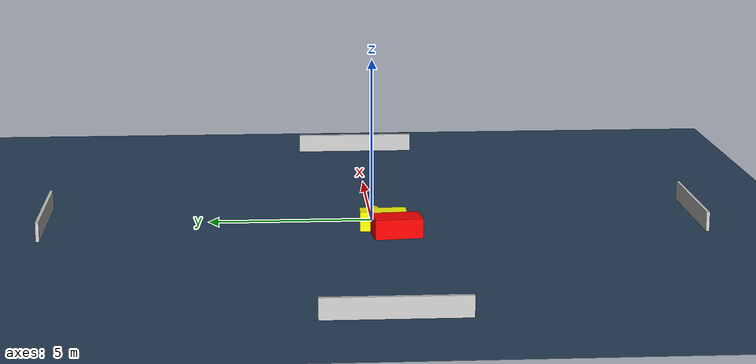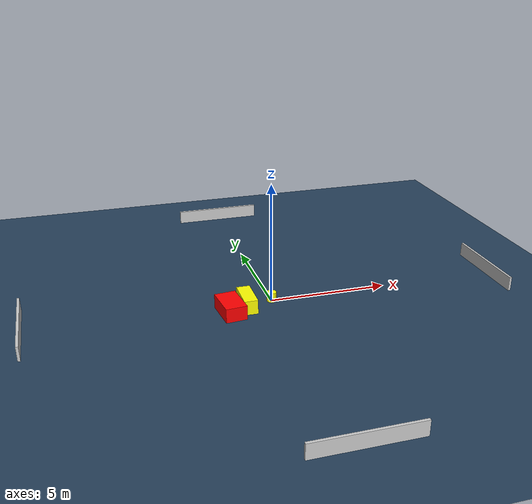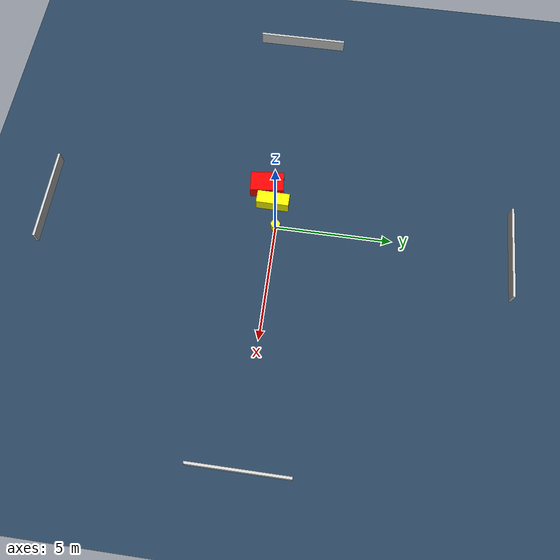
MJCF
<?xml version="1.0" ?>
<mujoco model="generated_environment">
  <option timestep="0.01" integrator="RK4" cone="elliptic"/>
  <default>
    <geom density="1"/>
  </default>
  <asset>
    <texture builtin="gradient" height="3072" name="skybox" rgb1="0.3 0.5 0.7" rgb2="0 0 0" type="skybox" width="512"/>
    <texture builtin="checker" height="300" name="groundplane" rgb1="0.2 0.3 0.4" rgb2="0.1 0.2 0.3" type="2d" width="300"/>
    <material name="groundplane" reflectance="0.2" texrepeat="5 5" texture="groundplane"/>
  </asset>
  <worldbody>
    <light dir="0 0 -1" directional="true" pos="0 0 1.5"/>
    <geom condim="3" friction="0.5 0.005 0.001" material="groundplane" name="floor" pos="0 0 0" size="0 0 0.05" type="plane"/>
    <body name="walls">
      <geom name="wall_1" condim="4" pos="-10.0 0.0 0.3" rgba="0.800000011920929 0.800000011920929 0.800000011920929 1.0" size="0.05 2.0 0.3" type="box"/>
      <geom name="wall_2" condim="4" pos="10.0 0.0 0.3" rgba="0.800000011920929 0.800000011920929 0.800000011920929 1.0" size="0.05 2.0 0.3" type="box"/>
      <geom name="wall_3" condim="4" pos="0.0 -10.0 0.3" rgba="0.800000011920929 0.800000011920929 0.800000011920929 1.0" size="2.0 0.05 0.3" type="box"/>
      <geom name="wall_4" condim="4" pos="0.0 10.0 0.3" rgba="0.800000011920929 0.800000011920929 0.800000011920929 1.0" size="2.0 0.05 0.3" type="box"/>
    </body>
    <body name="robot">
      <joint name="joint_x" type="slide" pos="0 0 0" axis="1 0 0"/>
      <joint name="joint_y" type="slide" pos="0 0 0" axis="0 1 0"/>
      <geom name="robot" type="cylinder" pos="0.0 0.0 0.2" size="0.2 0.2 0.0" mass="5.0" friction="1.0 0.005 0.0001" condim="4" rgba="1.0 1.0 0.0 1.0"/>
    </body>
    <body name="obstacle_1_movable">
      <geom name="obstacle_1_movable" condim="4" pos="-1.1159879743351637 -0.2600151768984749 0.3" euler="0 0 269.26005663464247" friction="0.0 0.005 0.001" rgba="1.0 1.0 0.0 1.0" size="0.7029852933855953 0.28232393532215483 0.3" type="box" mass="0.1"/>
      <joint type="free"/>
    </body>
    <body name="obstacle_2_static">
      <geom name="obstacle_2_static" condim="4" pos="-1.890502503624954 -0.6242812408338023 0.3" euler="0 0 185.83121608076672" friction="0.0 0.005 0.001" rgba="1.0 0.0 0.0 1.0" size="0.44422485378228943 0.7266993953096108 0.3" type="box"/>
    </body>
  </worldbody>
  <actuator>
    <motor name="actuator_x" joint="joint_x" gear="1" ctrlrange="-1 1"/>
    <motor name="actuator_y" joint="joint_y" gear="1" ctrlrange="-1 1"/>
  </actuator>
</mujoco>
